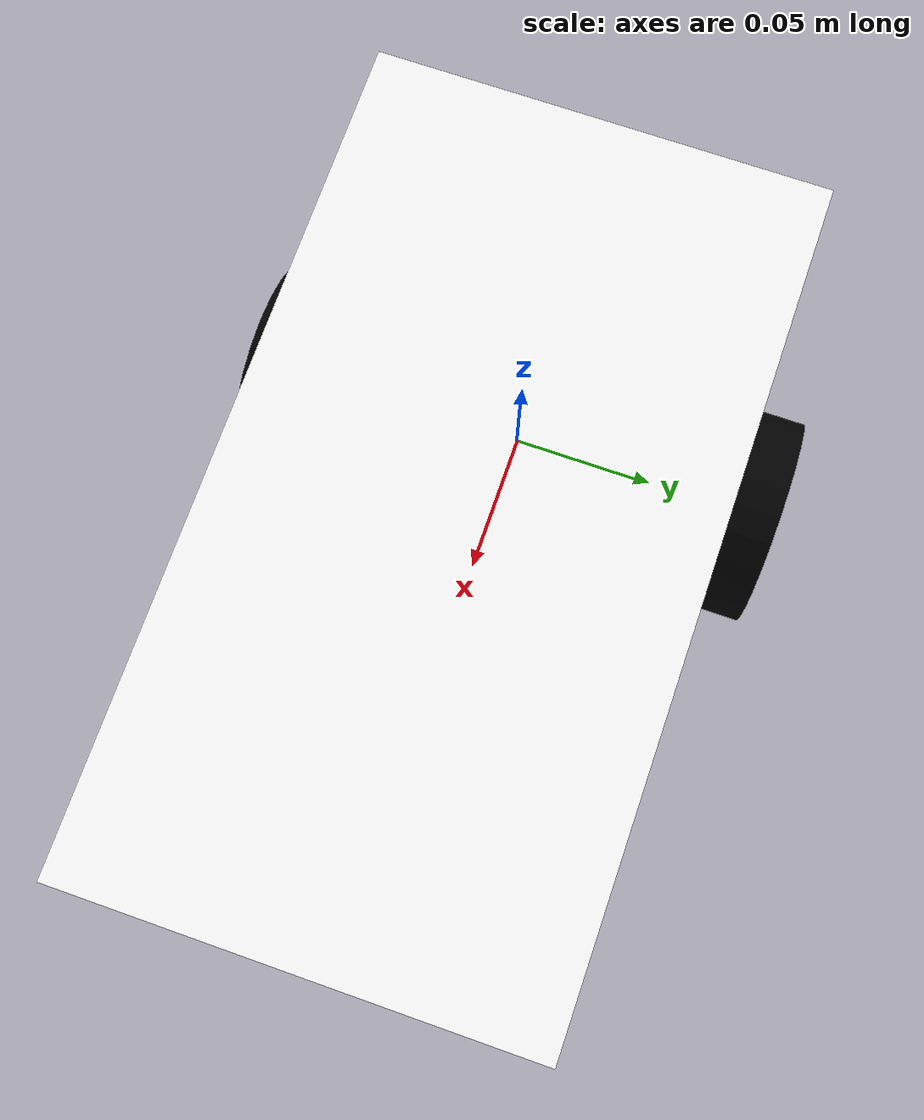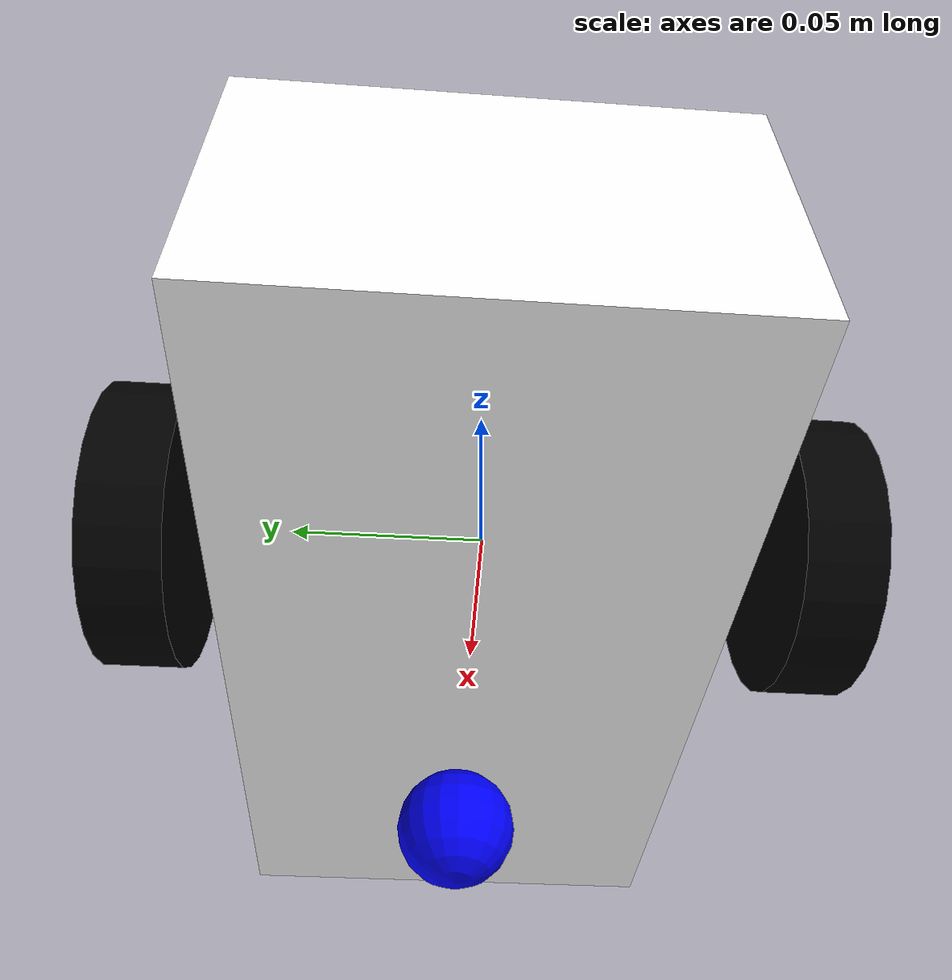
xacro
<?xml version="1.0"?>
<robot xmlns:xacro="http://www.ros.org/wiki/xacro">
    <xacro:include filename="robot_parameters.xacro"/>
    <xacro:include filename="inertial_macros.xacro"/>

    <!-- Materials -->
    <material name="white">
        <color rgba="1 1 1 1"/>
    </material>
    <material name="orange">
        <color rgba="1 0.5 0 1"/>
    </material>
    <material name="blue">
        <color rgba="0 0 1 1"/>
    </material>
    <material name="black">
        <color rgba="0 0 0 1"/>
    </material>
    <!-- Base link -->

    <link name="base_link">

    </link>
    <!-- Chassis frame -->
    <joint name="chassis_joint" type="fixed">
        <parent link="base_link"/>
        <child link="chassis"/>
        <origin xyz="-0.075 0 0" rpy="0 0 0"/>
    </joint>

    <link name="chassis">
        <visual>
            <!-- Box origin at the back of AGV -->
            <origin xyz="${chassis_L/2} 0 ${chassis_H/2}" rpy="0 0 0"/>
            <geometry>
                <box size="${chassis_L} ${chassis_W} ${chassis_H}"/>
            </geometry>
            <material name="white"/>
        </visual>
        <collision>
            <origin xyz="${chassis_L/2} 0 ${chassis_H/2}" rpy="0 0 0"/>
            <geometry>
                <box size="${chassis_L} ${chassis_W} ${chassis_H}"/>
            </geometry>
        </collision>
        <xacro:inertial_box mass="0.5" x="${chassis_L}" y="${chassis_W}" z="${chassis_H}">
            <origin xyz="${chassis_L/2} 0 ${chassis_H/2}" rpy="0 0 0"/>
        </xacro:inertial_box>
    </link>

    <gazebo reference="chassis">
        <material>Gazebo/White</material>
    </gazebo>

    <!-- Left wheel -->
    <joint name="left_wheel_joint" type="continuous">
        <parent link="base_link"/>
        <child link="left_wheel"/>
        <origin xyz="0 ${chassis_W/2 + wheel_width/2} 0" rpy="-${pi/2} 0 0"/>
        <axis xyz="0 0 1"/>
    </joint>

    <link name="left_wheel">
        <visual>
            <origin xyz="0 0 0" rpy="0 0 0"/>
            <geometry>
                <cylinder length="${wheel_width}" radius="${wheel_radius}"/>
            </geometry>
            <material name="black"/>
        </visual>
        <collision>
            <origin xyz="0 0 0" rpy="0 0 0"/>
            <geometry>
                <cylinder length="${wheel_width}" radius="${wheel_radius}"/>
            </geometry>
        </collision>
        <xacro:inertial_cylinder mass="0.1" length="${wheel_width}" radius="${wheel_radius}">
            <origin xyz="0 0 0" rpy="0 0 0"/>
        </xacro:inertial_cylinder>
    </link>

    <gazebo reference="left_wheel">
        <material>Gazebo/Black</material>
    </gazebo>

    <!-- Right wheel -->
    <joint name="right_wheel_joint" type="continuous">
        <parent link="base_link"/>
        <child link="right_wheel"/>
        <origin xyz="0 -${chassis_W/2 + wheel_width/2} 0" rpy="${pi/2} 0 0"/>
        <axis xyz="0 0 -1"/>
    </joint>

    <link name="right_wheel">
        <visual>
            <origin xyz="0 0 0" rpy="0 0 0"/>
            <geometry>
                <cylinder length="${wheel_width}" radius="${wheel_radius}"/>
            </geometry>
            <material name="black"/>
        </visual>
        <collision>
            <origin xyz="0 0 0" rpy="0 0 0"/>
            <geometry>
                <cylinder length="${wheel_width}" radius="${wheel_radius}"/>
            </geometry>
        </collision>
        <xacro:inertial_cylinder mass="0.1" length="${wheel_width}" radius="${wheel_radius}">
            <origin xyz="0 0 0" rpy="0 0 0"/>
        </xacro:inertial_cylinder>
    </link>

    <gazebo reference="right_wheel">
        <material>Gazebo/Black</material>
    </gazebo>

    <!-- Caster wheel -->
    <joint name="caster_wheel_joint" type="fixed">
        <parent link="chassis"/>
        <child link="caster_wheel"/>
        <!-- z = -wheel_radius + caster_radius = -0.037 + 0.02 = -0.017 -->
        <origin xyz="0.2 0 ${-wheel_radius + caster_radius}" rpy="0 0 0"/>
    </joint>

    <link name="caster_wheel">
        <visual>
            <origin xyz="0 0 0" rpy="0 0 0"/>
            <geometry>
                <sphere radius="${caster_radius}"/>
            </geometry>
            <material name="blue"/>
        </visual>
        <collision>
            <origin xyz="0 0 0" rpy="0 0 0"/>
            <geometry>
                <sphere radius="${caster_radius}"/>
            </geometry>
        </collision>
        <xacro:inertial_sphere mass="0.1" radius="${caster_radius}">
            <origin xyz="0 0 0" rpy="0 0 0"/>
        </xacro:inertial_sphere>
    </link>

    <gazebo reference="caster_wheel">
        <material>Gazebo/Blue</material>
        <mu1 value="0.001"/>
        <mu2 value="0.001"/>
    </gazebo>
</robot>

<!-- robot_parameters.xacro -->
<robot xmlns:xacro="http://www.ros.org/wiki/xacro" >

    <!-- Chassis dimensions -->
    <xacro:property name="chassis_L" value="0.275"/>
    <xacro:property name="chassis_W" value="0.15"/>
    <xacro:property name="chassis_H" value="0.1"/>

    <!-- Wheel params -->
    <xacro:property name="wheel_radius" value="0.037"/>
    <!-- 74mm diameter -->
    <xacro:property name="wheel_width" value="0.02"/>
    <!-- 20mm thick -->

    <!-- Caster wheel params -->
    <xacro:property name="caster_radius" value="0.02"/>

</robot>
